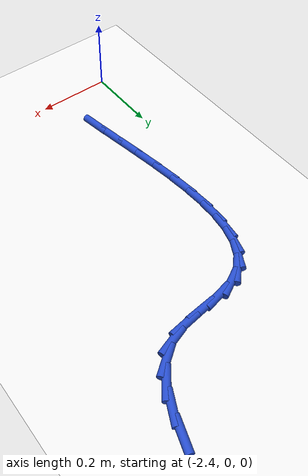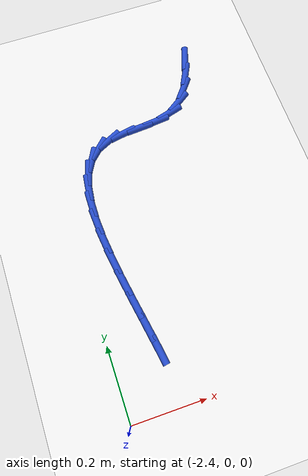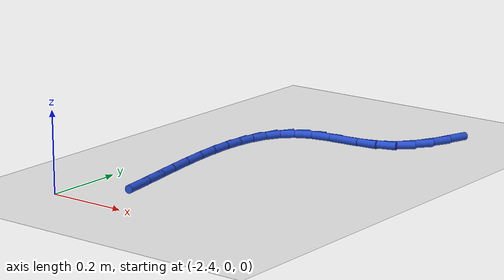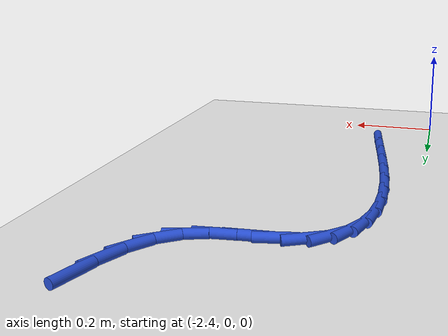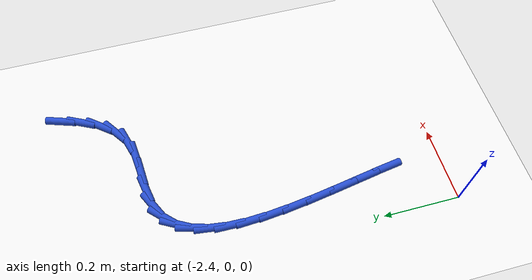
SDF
<sdf version="1.6">
 <world name="default">
  <model name="ground_plane">
   <static>1</static>
   <link name="link">
    <collision name="collision">
     <geometry><plane><normal>0 0 1</normal><size>100 100</size></plane></geometry>
     <surface><friction><ode><mu>100</mu><mu2>50</mu2></ode></friction></surface>
    </collision>
    <visual name="visual">
     <cast_shadows>0</cast_shadows>
     <geometry><plane><normal>0 0 1</normal><size>100 100</size></plane></geometry>
     <material>
      <script><uri>file://media/materials/scripts/gazebo.material</uri><name>Gazebo/WhiteGlow</name></script>
     </material>
    </visual>
   </link>
  </model>
  <model name="line">
   <link name="link_62">
    <pose>-1.9161532903623795 0.9450931047258738 0.01 0 1.57 1.2424962335736878</pose>
    <collision name="collision">
     <geometry><cylinder><radius>0.01</radius><length>0.08</length></cylinder></geometry>
    </collision>
    <visual name="visual">
     <material>
      <script><name>Gazebo/Blue</name><uri>file://media/materials/scripts/gazebo.material</uri></script>
     </material>
     <geometry><cylinder><radius>0.01</radius><length>0.08</length></cylinder></geometry>
    </visual>
   </link>
   <link name="link_63">
    <pose>-1.9340007681822604 0.892697089613306 0.01 0 1.57 1.1061214182087873</pose>
    <collision name="collision">
     <geometry><cylinder><radius>0.01</radius><length>0.08</length></cylinder></geometry>
    </collision>
    <visual name="visual">
     <material>
      <script><name>Gazebo/Blue</name><uri>file://media/materials/scripts/gazebo.material</uri></script>
     </material>
     <geometry><cylinder><radius>0.01</radius><length>0.08</length></cylinder></geometry>
    </visual>
   </link>
   <link name="link_64">
    <pose>-1.9570912420242876 0.8466345029574303 0.01 0 1.57 0.8960011336004077</pose>
    <collision name="collision">
     <geometry><cylinder><radius>0.01</radius><length>0.08</length></cylinder></geometry>
    </collision>
    <visual name="visual">
     <material>
      <script><name>Gazebo/Blue</name><uri>file://media/materials/scripts/gazebo.material</uri></script>
     </material>
     <geometry><cylinder><radius>0.01</radius><length>0.08</length></cylinder></geometry>
    </visual>
   </link>
   <link name="link_65">
    <pose>-1.9869153274688962 0.8093585419586122 0.01 0 1.57 0.6001053869498707</pose>
    <collision name="collision">
     <geometry><cylinder><radius>0.01</radius><length>0.08</length></cylinder></geometry>
    </collision>
    <visual name="visual">
     <material>
      <script><name>Gazebo/Blue</name><uri>file://media/materials/scripts/gazebo.material</uri></script>
     </material>
     <geometry><cylinder><radius>0.01</radius><length>0.08</length></cylinder></geometry>
    </visual>
   </link>
   <link name="link_66">
    <pose>-2.0249636400965203 0.7833224038172184 0.01 0 1.57 0.2766241663873046</pose>
    <collision name="collision">
     <geometry><cylinder><radius>0.01</radius><length>0.08</length></cylinder></geometry>
    </collision>
    <visual name="visual">
     <material>
      <script><name>Gazebo/Blue</name><uri>file://media/materials/scripts/gazebo.material</uri></script>
     </material>
     <geometry><cylinder><radius>0.01</radius><length>0.08</length></cylinder></geometry>
    </visual>
   </link>
   <link name="link_67">
    <pose>-2.0719656936237305 0.7699783852841191 0.01 0 1.57 0.09680928653053363</pose>
    <collision name="collision">
     <geometry><cylinder><radius>0.01</radius><length>0.08</length></cylinder></geometry>
    </collision>
    <visual name="visual">
     <material>
      <script><name>Gazebo/Blue</name><uri>file://media/materials/scripts/gazebo.material</uri></script>
     </material>
     <geometry><cylinder><radius>0.01</radius><length>0.08</length></cylinder></geometry>
    </visual>
   </link>
   <link name="link_68">
    <pose>-2.1241860838512183 0.7649071139405943 0.01 0 1.57 0.06427983328724608</pose>
    <collision name="collision">
     <geometry><cylinder><radius>0.01</radius><length>0.08</length></cylinder></geometry>
    </collision>
    <visual name="visual">
     <material>
      <script><name>Gazebo/Blue</name><uri>file://media/materials/scripts/gazebo.material</uri></script>
     </material>
     <geometry><cylinder><radius>0.01</radius><length>0.08</length></cylinder></geometry>
    </visual>
   </link>
   <link name="link_69">
    <pose>-2.1762663474905364 0.7615547848444852 0.01 0 1.57 0.17400628414478128</pose>
    <collision name="collision">
     <geometry><cylinder><radius>0.01</radius><length>0.08</length></cylinder></geometry>
    </collision>
    <visual name="visual">
     <material>
      <script><name>Gazebo/Blue</name><uri>file://media/materials/scripts/gazebo.material</uri></script>
     </material>
     <geometry><cylinder><radius>0.01</radius><length>0.08</length></cylinder></geometry>
    </visual>
   </link>
   <link name="link_70">
    <pose>-2.2228473934008677 0.7533665815193281 0.01 0 1.57 0.44689324955360427</pose>
    <collision name="collision">
     <geometry><cylinder><radius>0.01</radius><length>0.08</length></cylinder></geometry>
    </collision>
    <visual name="visual">
     <material>
      <script><name>Gazebo/Blue</name><uri>file://media/materials/scripts/gazebo.material</uri></script>
     </material>
     <geometry><cylinder><radius>0.01</radius><length>0.08</length></cylinder></geometry>
    </visual>
   </link>
   <link name="link_71">
    <pose>-2.26003079141365 0.7355472148341113 0.01 0 1.57 0.7718425095719428</pose>
    <collision name="collision">
     <geometry><cylinder><radius>0.01</radius><length>0.08</length></cylinder></geometry>
    </collision>
    <visual name="visual">
     <material>
      <script><name>Gazebo/Blue</name><uri>file://media/materials/scripts/gazebo.material</uri></script>
     </material>
     <geometry><cylinder><radius>0.01</radius><length>0.08</length></cylinder></geometry>
    </visual>
   </link>
   <link name="link_72">
    <pose>-2.2880494571421295 0.7082780576038216 0.01 0 1.57 1.063721684598557</pose>
    <collision name="collision">
     <geometry><cylinder><radius>0.01</radius><length>0.08</length></cylinder></geometry>
    </collision>
    <visual name="visual">
     <material>
      <script><name>Gazebo/Blue</name><uri>file://media/materials/scripts/gazebo.material</uri></script>
     </material>
     <geometry><cylinder><radius>0.01</radius><length>0.08</length></cylinder></geometry>
    </visual>
   </link>
   <link name="link_73">
    <pose>-2.3078616055890593 0.6726141858050402 0.01 0 1.57 1.2865488951452493</pose>
    <collision name="collision">
     <geometry><cylinder><radius>0.01</radius><length>0.08</length></cylinder></geometry>
    </collision>
    <visual name="visual">
     <material>
      <script><name>Gazebo/Blue</name><uri>file://media/materials/scripts/gazebo.material</uri></script>
     </material>
     <geometry><cylinder><radius>0.01</radius><length>0.08</length></cylinder></geometry>
    </visual>
   </link>
   <link name="link_74">
    <pose>-2.320425451757189 0.6296106754143486 0.01 0 1.57 1.444189596421528</pose>
    <collision name="collision">
     <geometry><cylinder><radius>0.01</radius><length>0.08</length></cylinder></geometry>
    </collision>
    <visual name="visual">
     <material>
      <script><name>Gazebo/Blue</name><uri>file://media/materials/scripts/gazebo.material</uri></script>
     </material>
     <geometry><cylinder><radius>0.01</radius><length>0.08</length></cylinder></geometry>
    </visual>
   </link>
   <link name="link_75">
    <pose>-2.326699210649271 0.5803226024083273 0.01 0 1.57 1.553521288655286</pose>
    <collision name="collision">
     <geometry><cylinder><radius>0.01</radius><length>0.08</length></cylinder></geometry>
    </collision>
    <visual name="visual">
     <material>
      <script><name>Gazebo/Blue</name><uri>file://media/materials/scripts/gazebo.material</uri></script>
     </material>
     <geometry><cylinder><radius>0.01</radius><length>0.08</length></cylinder></geometry>
    </visual>
   </link>
   <link name="link_76">
    <pose>-2.3276410972680583 0.5258050427635579 0.01 0 1.57 -1.5123919532165642</pose>
    <collision name="collision">
     <geometry><cylinder><radius>0.01</radius><length>0.08</length></cylinder></geometry>
    </collision>
    <visual name="visual">
     <material>
      <script><name>Gazebo/Blue</name><uri>file://media/materials/scripts/gazebo.material</uri></script>
     </material>
     <geometry><cylinder><radius>0.01</radius><length>0.08</length></cylinder></geometry>
    </visual>
   </link>
   <link name="link_77">
    <pose>-2.3242093266162995 0.4671130724566217 0.01 0 1.57 -1.4604700814794547</pose>
    <collision name="collision">
     <geometry><cylinder><radius>0.01</radius><length>0.08</length></cylinder></geometry>
    </collision>
    <visual name="visual">
     <material>
      <script><name>Gazebo/Blue</name><uri>file://media/materials/scripts/gazebo.material</uri></script>
     </material>
     <geometry><cylinder><radius>0.01</radius><length>0.08</length></cylinder></geometry>
    </visual>
   </link>
   <link name="link_78">
    <pose>-2.317362113696749 0.40530176746409896 0.01 0 1.57 -1.4261485653794366</pose>
    <collision name="collision">
     <geometry><cylinder><radius>0.01</radius><length>0.08</length></cylinder></geometry>
    </collision>
    <visual name="visual">
     <material>
      <script><name>Gazebo/Blue</name><uri>file://media/materials/scripts/gazebo.material</uri></script>
     </material>
     <geometry><cylinder><radius>0.01</radius><length>0.08</length></cylinder></geometry>
    </visual>
   </link>
   <link name="link_79">
    <pose>-2.3080576735121574 0.34142620376257204 0.01 0 1.57 -1.4058076839784568</pose>
    <collision name="collision">
     <geometry><cylinder><radius>0.01</radius><length>0.08</length></cylinder></geometry>
    </collision>
    <visual name="visual">
     <material>
      <script><name>Gazebo/Blue</name><uri>file://media/materials/scripts/gazebo.material</uri></script>
     </material>
     <geometry><cylinder><radius>0.01</radius><length>0.08</length></cylinder></geometry>
    </visual>
   </link>
   <link name="link_80">
    <pose>-2.297254221065276 0.27654145732862145 0.01 0 1.57 -1.3975888142707091</pose>
    <collision name="collision">
     <geometry><cylinder><radius>0.01</radius><length>0.08</length></cylinder></geometry>
    </collision>
    <visual name="visual">
     <material>
      <script><name>Gazebo/Blue</name><uri>file://media/materials/scripts/gazebo.material</uri></script>
     </material>
     <geometry><cylinder><radius>0.01</radius><length>0.08</length></cylinder></geometry>
    </visual>
   </link>
   <link name="link_81">
    <pose>-2.2859099713588567 0.21170260413882838 0.01 0 1.57 -1.4010129078321765</pose>
    <collision name="collision">
     <geometry><cylinder><radius>0.01</radius><length>0.08</length></cylinder></geometry>
    </collision>
    <visual name="visual">
     <material>
      <script><name>Gazebo/Blue</name><uri>file://media/materials/scripts/gazebo.material</uri></script>
     </material>
     <geometry><cylinder><radius>0.01</radius><length>0.08</length></cylinder></geometry>
    </visual>
   </link>
   <link name="link_82">
    <pose>-2.274983139395651 0.14796472016977286 0.01 0 1.57 -1.4148490281749355</pose>
    <collision name="collision">
     <geometry><cylinder><radius>0.01</radius><length>0.08</length></cylinder></geometry>
    </collision>
    <visual name="visual">
     <material>
      <script><name>Gazebo/Blue</name><uri>file://media/materials/scripts/gazebo.material</uri></script>
     </material>
     <geometry><cylinder><radius>0.01</radius><length>0.08</length></cylinder></geometry>
    </visual>
   </link>
  </model>
 </world>
</sdf>
